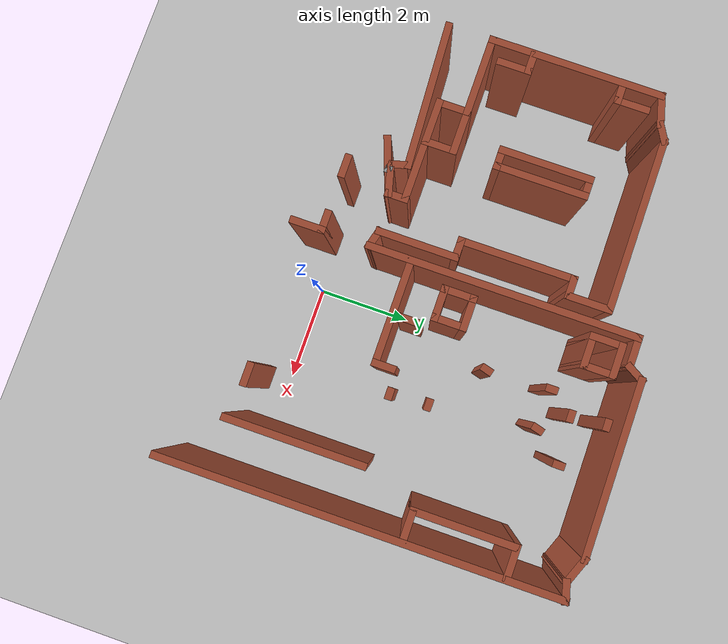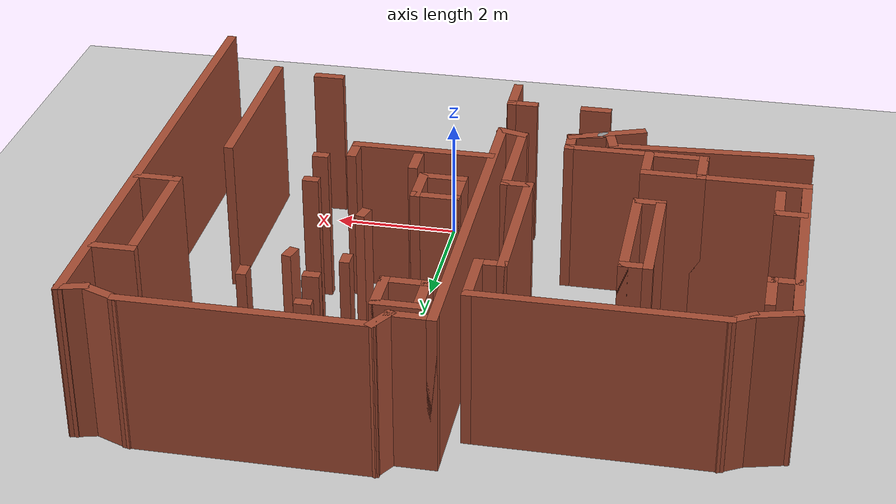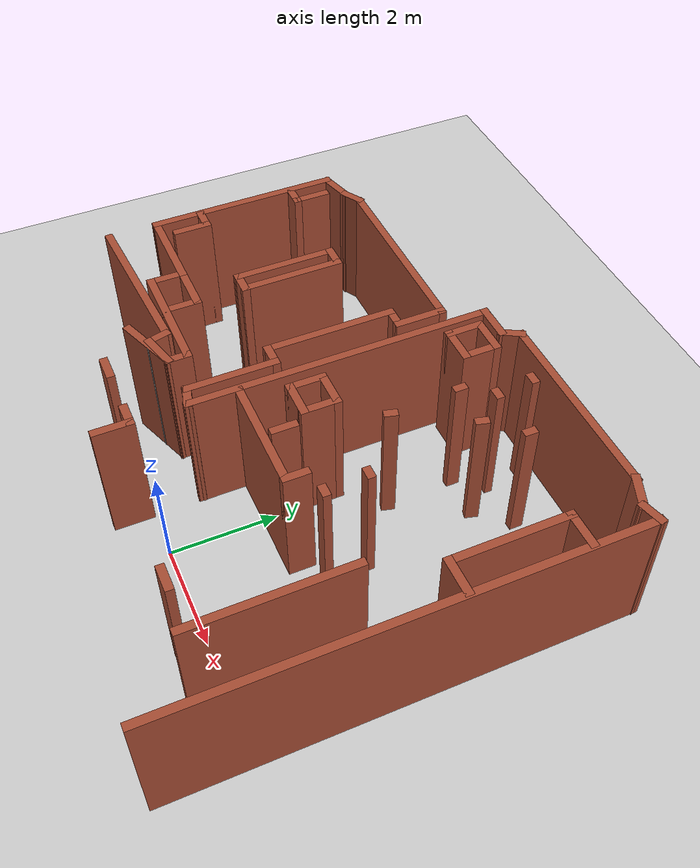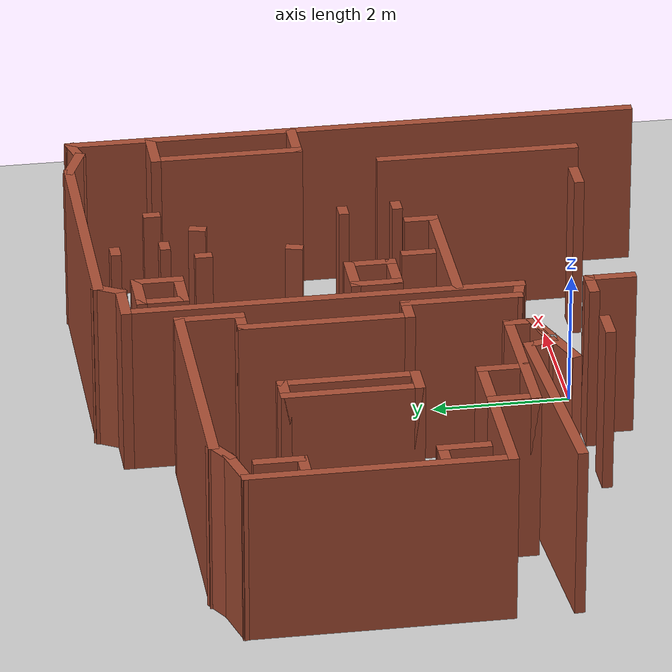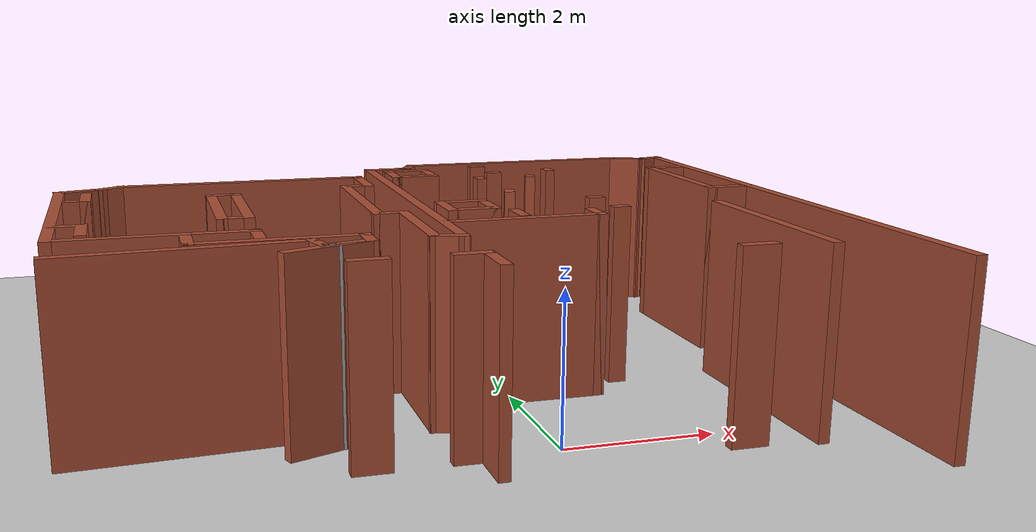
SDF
<sdf version="1.6">
 <world name="default">
  <model name="ground_plane">
   <static>1</static>
   <link name="link">
    <collision name="collision">
     <geometry><plane><normal>0 0 1</normal><size>100 100</size></plane></geometry>
     <surface>
      <contact><collide_bitmask>65535</collide_bitmask></contact>
      <friction><ode><mu>100</mu><mu2>50</mu2></ode></friction>
     </surface>
    </collision>
    <visual name="visual">
     <cast_shadows>0</cast_shadows>
     <geometry><plane><normal>0 0 1</normal><size>100 100</size></plane></geometry>
     <material>
      <script><uri>file://media/materials/scripts/gazebo.material</uri><name>Gazebo/Grey</name></script>
     </material>
    </visual>
   </link>
  </model>
  <model name="map_26">
   <pose>-0.762492 -0.95628 0 0 -0 0</pose>
   <link name="Wall_1">
    <collision name="Wall_1_Collision">
     <geometry><box><size>3.75 0.15 2.5</size></box></geometry>
     <pose>0 0 1.25 0 -0 0</pose>
    </collision>
    <visual name="Wall_1_Visual">
     <pose>0 0 1.25 0 -0 0</pose>
     <geometry><box><size>3.75 0.15 2.5</size></box></geometry>
     <material>
      <script><uri>file://media/materials/scripts/gazebo.material</uri><name>Gazebo/Bricks</name></script>
      <ambient>1 1 1 1</ambient>
     </material>
     <meta><layer>0</layer></meta>
    </visual>
    <pose>2.37487 7.7923 0 0 -0 3.14159</pose>
   </link>
   <link name="Wall_10">
    <collision name="Wall_10_Collision">
     <geometry><box><size>1 0.15 2.5</size></box></geometry>
     <pose>0 0 1.25 0 -0 0</pose>
    </collision>
    <visual name="Wall_10_Visual">
     <pose>0 0 1.25 0 -0 0</pose>
     <geometry><box><size>1 0.15 2.5</size></box></geometry>
     <material>
      <script><uri>file://media/materials/scripts/gazebo.material</uri><name>Gazebo/Bricks</name></script>
      <ambient>1 1 1 1</ambient>
     </material>
     <meta><layer>0</layer></meta>
    </visual>
    <pose>-0.538205 6.35478 0 0 -0 1.5708</pose>
   </link>
   <link name="Wall_101">
    <collision name="Wall_101_Collision">
     <geometry><box><size>0.75 0.15 2.5</size></box></geometry>
     <pose>0 0 1.25 0 -0 0</pose>
    </collision>
    <visual name="Wall_101_Visual">
     <pose>0 0 1.25 0 -0 0</pose>
     <geometry><box><size>0.75 0.15 2.5</size></box></geometry>
     <material>
      <script><uri>file://media/materials/scripts/gazebo.material</uri><name>Gazebo/Bricks</name></script>
      <ambient>1 1 1 1</ambient>
     </material>
     <meta><layer>0</layer></meta>
    </visual>
    <pose>-4.63789 5.94255 0 0 -0 -1.5708</pose>
   </link>
   <link name="Wall_102">
    <collision name="Wall_102_Collision">
     <geometry><box><size>0.5 0.15 2.5</size></box></geometry>
     <pose>0 0 1.25 0 -0 0</pose>
    </collision>
    <visual name="Wall_102_Visual">
     <pose>0 0 1.25 0 -0 0</pose>
     <geometry><box><size>0.5 0.15 2.5</size></box></geometry>
     <material>
      <script><uri>file://media/materials/scripts/gazebo.material</uri><name>Gazebo/Bricks</name></script>
      <ambient>1 1 1 1</ambient>
     </material>
     <meta><layer>0</layer></meta>
    </visual>
    <pose>-4.81289 5.64255 0 0 -0 3.14159</pose>
   </link>
   <link name="Wall_106">
    <collision name="Wall_106_Collision">
     <geometry><box><size>0.5 0.15 2.5</size></box></geometry>
     <pose>0 0 1.25 0 -0 0</pose>
    </collision>
    <visual name="Wall_106_Visual">
     <pose>0 0 1.25 0 -0 0</pose>
     <geometry><box><size>0.5 0.15 2.5</size></box></geometry>
     <material>
      <script><uri>file://media/materials/scripts/gazebo.material</uri><name>Gazebo/Bricks</name></script>
      <ambient>1 1 1 1</ambient>
     </material>
     <meta><layer>0</layer></meta>
    </visual>
    <pose>-4.80985 3.74444 0 0 -0 0</pose>
   </link>
   <link name="Wall_107">
    <collision name="Wall_107_Collision">
     <geometry><box><size>0.75 0.15 2.5</size></box></geometry>
     <pose>0 0 1.25 0 -0 0</pose>
    </collision>
    <visual name="Wall_107_Visual">
     <pose>0 0 1.25 0 -0 0</pose>
     <geometry><box><size>0.75 0.15 2.5</size></box></geometry>
     <material>
      <script><uri>file://media/materials/scripts/gazebo.material</uri><name>Gazebo/Bricks</name></script>
      <ambient>1 1 1 1</ambient>
     </material>
     <meta><layer>0</layer></meta>
    </visual>
    <pose>-4.63485 3.44444 0 0 -0 -1.5708</pose>
   </link>
   <link name="Wall_109">
    <collision name="Wall_109_Collision">
     <geometry><box><size>0.5 0.15 2.5</size></box></geometry>
     <pose>0 0 1.25 0 -0 0</pose>
    </collision>
    <visual name="Wall_109_Visual">
     <pose>0 0 1.25 0 -0 0</pose>
     <geometry><box><size>0.5 0.15 2.5</size></box></geometry>
     <material>
      <script><uri>file://media/materials/scripts/gazebo.material</uri><name>Gazebo/Bricks</name></script>
      <ambient>1 1 1 1</ambient>
     </material>
     <meta><layer>0</layer></meta>
    </visual>
    <pose>-2.73114 5.61802 0 0 -0 3.14159</pose>
   </link>
   <link name="Wall_11">
    <collision name="Wall_11_Collision">
     <geometry><box><size>3.75 0.15 2.5</size></box></geometry>
     <pose>0 0 1.25 0 -0 0</pose>
    </collision>
    <visual name="Wall_11_Visual">
     <pose>0 0 1.25 0 -0 0</pose>
     <geometry><box><size>3.75 0.15 2.5</size></box></geometry>
     <material>
      <script><uri>file://media/materials/scripts/gazebo.material</uri><name>Gazebo/Bricks</name></script>
      <ambient>1 1 1 1</ambient>
     </material>
     <meta><layer>0</layer></meta>
    </visual>
    <pose>-2.3382 6.77978 0 0 -0 3.14159</pose>
   </link>
   <link name="Wall_110">
    <collision name="Wall_110_Collision">
     <geometry><box><size>2 0.15 2.5</size></box></geometry>
     <pose>0 0 1.25 0 -0 0</pose>
    </collision>
    <visual name="Wall_110_Visual">
     <pose>0 0 1.25 0 -0 0</pose>
     <geometry><box><size>2 0.15 2.5</size></box></geometry>
     <material>
      <script><uri>file://media/materials/scripts/gazebo.material</uri><name>Gazebo/Bricks</name></script>
      <ambient>1 1 1 1</ambient>
     </material>
     <meta><layer>0</layer></meta>
    </visual>
    <pose>-2.90614 4.69302 0 0 -0 -1.5708</pose>
   </link>
   <link name="Wall_111">
    <collision name="Wall_111_Collision">
     <geometry><box><size>0.5 0.15 2.5</size></box></geometry>
     <pose>0 0 1.25 0 -0 0</pose>
    </collision>
    <visual name="Wall_111_Visual">
     <pose>0 0 1.25 0 -0 0</pose>
     <geometry><box><size>0.5 0.15 2.5</size></box></geometry>
     <material>
      <script><uri>file://media/materials/scripts/gazebo.material</uri><name>Gazebo/Bricks</name></script>
      <ambient>1 1 1 1</ambient>
     </material>
     <meta><layer>0</layer></meta>
    </visual>
    <pose>-2.73114 3.76802 0 0 -0 0</pose>
   </link>
   <link name="Wall_113">
    <collision name="Wall_113_Collision">
     <geometry><box><size>2 0.15 2.5</size></box></geometry>
     <pose>0 0 1.25 0 -0 0</pose>
    </collision>
    <visual name="Wall_113_Visual">
     <pose>0 0 1.25 0 -0 0</pose>
     <geometry><box><size>2 0.15 2.5</size></box></geometry>
     <material>
      <script><uri>file://media/materials/scripts/gazebo.material</uri><name>Gazebo/Bricks</name></script>
      <ambient>1 1 1 1</ambient>
     </material>
     <meta><layer>0</layer></meta>
    </visual>
    <pose>-2.55614 4.69302 0 0 -0 -1.5708</pose>
   </link>
   <link name="Wall_115">
    <collision name="Wall_115_Collision">
     <geometry><box><size>1 0.15 2.5</size></box></geometry>
     <pose>0 0 1.25 0 -0 0</pose>
    </collision>
    <visual name="Wall_115_Visual">
     <pose>0 0 1.25 0 -0 0</pose>
     <geometry><box><size>1 0.15 2.5</size></box></geometry>
     <material>
      <script><uri>file://media/materials/scripts/gazebo.material</uri><name>Gazebo/Bricks</name></script>
      <ambient>1 1 1 1</ambient>
     </material>
     <meta><layer>0</layer></meta>
    </visual>
    <pose>-2.99587 2.84949 0 0 -0 0</pose>
   </link>
   <link name="Wall_116">
    <collision name="Wall_116_Collision">
     <geometry><box><size>0.75 0.15 2.5</size></box></geometry>
     <pose>0 0 1.25 0 -0 0</pose>
    </collision>
    <visual name="Wall_116_Visual">
     <pose>0 0 1.25 0 -0 0</pose>
     <geometry><box><size>0.75 0.15 2.5</size></box></geometry>
     <material>
      <script><uri>file://media/materials/scripts/gazebo.material</uri><name>Gazebo/Bricks</name></script>
      <ambient>1 1 1 1</ambient>
     </material>
     <meta><layer>0</layer></meta>
    </visual>
    <pose>-2.57087 2.54948 0 0 -0 -1.5708</pose>
   </link>
   <link name="Wall_118">
    <collision name="Wall_118_Collision">
     <geometry><box><size>0.75 0.15 2.5</size></box></geometry>
     <pose>0 0 1.25 0 -0 0</pose>
    </collision>
    <visual name="Wall_118_Visual">
     <pose>0 0 1.25 0 -0 0</pose>
     <geometry><box><size>0.75 0.15 2.5</size></box></geometry>
     <material>
      <script><uri>file://media/materials/scripts/gazebo.material</uri><name>Gazebo/Bricks</name></script>
      <ambient>1 1 1 1</ambient>
     </material>
     <meta><layer>0</layer></meta>
    </visual>
    <pose>4.68444 6.49698 0 0 -0 3.14159</pose>
   </link>
   <link name="Wall_119">
    <collision name="Wall_119_Collision">
     <geometry><box><size>2.25 0.15 2.5</size></box></geometry>
     <pose>0 0 1.25 0 -0 0</pose>
    </collision>
    <visual name="Wall_119_Visual">
     <pose>0 0 1.25 0 -0 0</pose>
     <geometry><box><size>2.25 0.15 2.5</size></box></geometry>
     <material>
      <script><uri>file://media/materials/scripts/gazebo.material</uri><name>Gazebo/Bricks</name></script>
      <ambient>1 1 1 1</ambient>
     </material>
     <meta><layer>0</layer></meta>
    </visual>
    <pose>4.38444 5.44698 0 0 -0 -1.5708</pose>
   </link>
   <link name="Wall_12">
    <collision name="Wall_12_Collision">
     <geometry><box><size>0.5 0.15 2.5</size></box></geometry>
     <pose>0 0 1.25 0 -0 0</pose>
    </collision>
    <visual name="Wall_12_Visual">
     <pose>0 0 1.25 0 -0 0</pose>
     <geometry><box><size>0.5 0.15 2.5</size></box></geometry>
     <material>
      <script><uri>file://media/materials/scripts/gazebo.material</uri><name>Gazebo/Bricks</name></script>
      <ambient>1 1 1 1</ambient>
     </material>
     <meta><layer>0</layer></meta>
    </visual>
    <pose>-4.28976 6.69228 0 0 -0 -2.61799</pose>
   </link>
   <link name="Wall_120">
    <collision name="Wall_120_Collision">
     <geometry><box><size>0.75 0.15 2.5</size></box></geometry>
     <pose>0 0 1.25 0 -0 0</pose>
    </collision>
    <visual name="Wall_120_Visual">
     <pose>0 0 1.25 0 -0 0</pose>
     <geometry><box><size>0.75 0.15 2.5</size></box></geometry>
     <material>
      <script><uri>file://media/materials/scripts/gazebo.material</uri><name>Gazebo/Bricks</name></script>
      <ambient>1 1 1 1</ambient>
     </material>
     <meta><layer>0</layer></meta>
    </visual>
    <pose>4.68444 4.39698 0 0 -0 0</pose>
   </link>
   <link name="Wall_122">
    <collision name="Wall_122_Collision">
     <geometry><box><size>2.25 0.15 2.5</size></box></geometry>
     <pose>0 0 1.25 0 -0 0</pose>
    </collision>
    <visual name="Wall_122_Visual">
     <pose>0 0 1.25 0 -0 0</pose>
     <geometry><box><size>2.25 0.15 2.5</size></box></geometry>
     <material>
      <script><uri>file://media/materials/scripts/gazebo.material</uri><name>Gazebo/Bricks</name></script>
      <ambient>1 1 1 1</ambient>
     </material>
     <meta><layer>0</layer></meta>
    </visual>
    <pose>0.899445 2.77296 0 0 -0 0</pose>
   </link>
   <link name="Wall_123">
    <collision name="Wall_123_Collision">
     <geometry><box><size>0.5 0.15 2.5</size></box></geometry>
     <pose>0 0 1.25 0 -0 0</pose>
    </collision>
    <visual name="Wall_123_Visual">
     <pose>0 0 1.25 0 -0 0</pose>
     <geometry><box><size>0.5 0.15 2.5</size></box></geometry>
     <material>
      <script><uri>file://media/materials/scripts/gazebo.material</uri><name>Gazebo/Bricks</name></script>
      <ambient>1 1 1 1</ambient>
     </material>
     <meta><layer>0</layer></meta>
    </visual>
    <pose>1.94945 2.94796 0 0 -0 1.5708</pose>
   </link>
   <link name="Wall_125">
    <collision name="Wall_125_Collision">
     <geometry><box><size>0.5 0.15 2.5</size></box></geometry>
     <pose>0 0 1.25 0 -0 0</pose>
    </collision>
    <visual name="Wall_125_Visual">
     <pose>0 0 1.25 0 -0 0</pose>
     <geometry><box><size>0.5 0.15 2.5</size></box></geometry>
     <material>
      <script><uri>file://media/materials/scripts/gazebo.material</uri><name>Gazebo/Bricks</name></script>
      <ambient>1 1 1 1</ambient>
     </material>
     <meta><layer>0</layer></meta>
    </visual>
    <pose>0.936584 3.15309 0 0 -0 -1.5708</pose>
   </link>
   <link name="Wall_128">
    <collision name="Wall_128_Collision">
     <geometry><box><size>0.75 0.15 2.5</size></box></geometry>
     <pose>0 0 1.25 0 -0 0</pose>
    </collision>
    <visual name="Wall_128_Visual">
     <pose>0 0 1.25 0 -0 0</pose>
     <geometry><box><size>0.75 0.15 2.5</size></box></geometry>
     <material>
      <script><uri>file://media/materials/scripts/gazebo.material</uri><name>Gazebo/Bricks</name></script>
      <ambient>1 1 1 1</ambient>
     </material>
     <meta><layer>0</layer></meta>
    </visual>
    <pose>0.057621 6.93716 0 0 -0 -1.5708</pose>
   </link>
   <link name="Wall_129">
    <collision name="Wall_129_Collision">
     <geometry><box><size>0.75 0.15 2.5</size></box></geometry>
     <pose>0 0 1.25 0 -0 0</pose>
    </collision>
    <visual name="Wall_129_Visual">
     <pose>0 0 1.25 0 -0 0</pose>
     <geometry><box><size>0.75 0.15 2.5</size></box></geometry>
     <material>
      <script><uri>file://media/materials/scripts/gazebo.material</uri><name>Gazebo/Bricks</name></script>
      <ambient>1 1 1 1</ambient>
     </material>
     <meta><layer>0</layer></meta>
    </visual>
    <pose>0.357621 6.63716 0 0 -0 0</pose>
   </link>
   <link name="Wall_13">
    <collision name="Wall_13_Collision">
     <geometry><box><size>0.75 0.15 2.5</size></box></geometry>
     <pose>0 0 1.25 0 -0 0</pose>
    </collision>
    <visual name="Wall_13_Visual">
     <pose>0 0 1.25 0 -0 0</pose>
     <geometry><box><size>0.75 0.15 2.5</size></box></geometry>
     <material>
      <script><uri>file://media/materials/scripts/gazebo.material</uri><name>Gazebo/Bricks</name></script>
      <ambient>1 1 1 1</ambient>
     </material>
     <meta><layer>0</layer></meta>
    </visual>
    <pose>-4.73109 6.52713 0 0 -0 -2.87979</pose>
   </link>
   <link name="Wall_130">
    <collision name="Wall_130_Collision">
     <geometry><box><size>0.75 0.15 2.5</size></box></geometry>
     <pose>0 0 1.25 0 -0 0</pose>
    </collision>
    <visual name="Wall_130_Visual">
     <pose>0 0 1.25 0 -0 0</pose>
     <geometry><box><size>0.75 0.15 2.5</size></box></geometry>
     <material>
      <script><uri>file://media/materials/scripts/gazebo.material</uri><name>Gazebo/Bricks</name></script>
      <ambient>1 1 1 1</ambient>
     </material>
     <meta><layer>0</layer></meta>
    </visual>
    <pose>0.657621 6.93716 0 0 -0 1.5708</pose>
   </link>
   <link name="Wall_131">
    <collision name="Wall_131_Collision">
     <geometry><box><size>0.75 0.15 2.5</size></box></geometry>
     <pose>0 0 1.25 0 -0 0</pose>
    </collision>
    <visual name="Wall_131_Visual">
     <pose>0 0 1.25 0 -0 0</pose>
     <geometry><box><size>0.75 0.15 2.5</size></box></geometry>
     <material>
      <script><uri>file://media/materials/scripts/gazebo.material</uri><name>Gazebo/Bricks</name></script>
      <ambient>1 1 1 1</ambient>
     </material>
     <meta><layer>0</layer></meta>
    </visual>
    <pose>0.357621 7.23716 0 0 -0 3.14159</pose>
   </link>
   <link name="Wall_135">
    <collision name="Wall_135_Collision">
     <geometry><box><size>0.75 0.15 2.5</size></box></geometry>
     <pose>0 0 1.25 0 -0 0</pose>
    </collision>
    <visual name="Wall_135_Visual">
     <pose>0 0 1.25 0 -0 0</pose>
     <geometry><box><size>0.75 0.15 2.5</size></box></geometry>
     <material>
      <script><uri>file://media/materials/scripts/gazebo.material</uri><name>Gazebo/Bricks</name></script>
      <ambient>1 1 1 1</ambient>
     </material>
     <meta><layer>0</layer></meta>
    </visual>
    <pose>0.127013 3.88392 0 0 -0 -1.5708</pose>
   </link>
   <link name="Wall_136">
    <collision name="Wall_136_Collision">
     <geometry><box><size>0.75 0.15 2.5</size></box></geometry>
     <pose>0 0 1.25 0 -0 0</pose>
    </collision>
    <visual name="Wall_136_Visual">
     <pose>0 0 1.25 0 -0 0</pose>
     <geometry><box><size>0.75 0.15 2.5</size></box></geometry>
     <material>
      <script><uri>file://media/materials/scripts/gazebo.material</uri><name>Gazebo/Bricks</name></script>
      <ambient>1 1 1 1</ambient>
     </material>
     <meta><layer>0</layer></meta>
    </visual>
    <pose>0.427013 3.58392 0 0 -0 0</pose>
   </link>
   <link name="Wall_137">
    <collision name="Wall_137_Collision">
     <geometry><box><size>0.75 0.15 2.5</size></box></geometry>
     <pose>0 0 1.25 0 -0 0</pose>
    </collision>
    <visual name="Wall_137_Visual">
     <pose>0 0 1.25 0 -0 0</pose>
     <geometry><box><size>0.75 0.15 2.5</size></box></geometry>
     <material>
      <script><uri>file://media/materials/scripts/gazebo.material</uri><name>Gazebo/Bricks</name></script>
      <ambient>1 1 1 1</ambient>
     </material>
     <meta><layer>0</layer></meta>
    </visual>
    <pose>0.727013 3.88392 0 0 -0 1.5708</pose>
   </link>
   <link name="Wall_138">
    <collision name="Wall_138_Collision">
     <geometry><box><size>0.75 0.15 2.5</size></box></geometry>
     <pose>0 0 1.25 0 -0 0</pose>
    </collision>
    <visual name="Wall_138_Visual">
     <pose>0 0 1.25 0 -0 0</pose>
     <geometry><box><size>0.75 0.15 2.5</size></box></geometry>
     <material>
      <script><uri>file://media/materials/scripts/gazebo.material</uri><name>Gazebo/Bricks</name></script>
      <ambient>1 1 1 1</ambient>
     </material>
     <meta><layer>0</layer></meta>
    </visual>
    <pose>0.427013 4.18392 0 0 -0 3.14159</pose>
   </link>
   <link name="Wall_14">
    <collision name="Wall_14_Collision">
     <geometry><box><size>3.75 0.15 2.5</size></box></geometry>
     <pose>0 0 1.25 0 -0 0</pose>
    </collision>
    <visual name="Wall_14_Visual">
     <pose>0 0 1.25 0 -0 0</pose>
     <geometry><box><size>3.75 0.15 2.5</size></box></geometry>
     <material>
      <script><uri>file://media/materials/scripts/gazebo.material</uri><name>Gazebo/Bricks</name></script>
      <ambient>1 1 1 1</ambient>
     </material>
     <meta><layer>0</layer></meta>
    </visual>
    <pose>-5.02087 4.64949 0 0 -0 -1.5708</pose>
   </link>
   <link name="Wall_140">
    <collision name="Wall_140_Collision">
     <geometry><box><size>3 0.15 2.5</size></box></geometry>
     <pose>0 0 1.25 0 -0 0</pose>
    </collision>
    <visual name="Wall_140_Visual">
     <pose>0 0 1.25 0 -0 0</pose>
     <geometry><box><size>3 0.15 2.5</size></box></geometry>
     <material>
      <script><uri>file://media/materials/scripts/gazebo.material</uri><name>Gazebo/Bricks</name></script>
      <ambient>1 1 1 1</ambient>
     </material>
     <meta><layer>0</layer></meta>
    </visual>
    <pose>3.8973 1.78744 0 0 -0 -1.5708</pose>
   </link>
   <link name="Wall_15">
    <collision name="Wall_15_Collision">
     <geometry><box><size>1.75 0.15 2.5</size></box></geometry>
     <pose>0 0 1.25 0 -0 0</pose>
    </collision>
    <visual name="Wall_15_Visual">
     <pose>0 0 1.25 0 -0 0</pose>
     <geometry><box><size>1.75 0.15 2.5</size></box></geometry>
     <material>
      <script><uri>file://media/materials/scripts/gazebo.material</uri><name>Gazebo/Bricks</name></script>
      <ambient>1 1 1 1</ambient>
     </material>
     <meta><layer>0</layer></meta>
    </visual>
    <pose>-4.22087 2.84949 0 0 -0 0</pose>
   </link>
   <link name="Wall_186">
    <collision name="Wall_186_Collision">
     <geometry><box><size>0.25 0.15 2.5</size></box></geometry>
     <pose>0 0 1.25 0 -0 0</pose>
    </collision>
    <visual name="Wall_186_Visual">
     <pose>0 0 1.25 0 -0 0</pose>
     <geometry><box><size>0.25 0.15 2.5</size></box></geometry>
     <material>
      <script><uri>file://media/materials/scripts/gazebo.material</uri><name>Gazebo/Bricks</name></script>
      <ambient>1 1 1 1</ambient>
     </material>
     <meta><layer>0</layer></meta>
    </visual>
    <pose>1.61111 7.42221 0 0 -0 0</pose>
   </link>
   <link name="Wall_188">
    <collision name="Wall_188_Collision">
     <geometry><box><size>0.25 0.15 2.5</size></box></geometry>
     <pose>0 0 1.25 0 -0 0</pose>
    </collision>
    <visual name="Wall_188_Visual">
     <pose>0 0 1.25 0 -0 0</pose>
     <geometry><box><size>0.25 0.15 2.5</size></box></geometry>
     <material>
      <script><uri>file://media/materials/scripts/gazebo.material</uri><name>Gazebo/Bricks</name></script>
      <ambient>1 1 1 1</ambient>
     </material>
     <meta><layer>0</layer></meta>
    </visual>
    <pose>1.6805 6.70516 0 0 -0 0</pose>
   </link>
   <link name="Wall_19">
    <collision name="Wall_19_Collision">
     <geometry><box><size>0.75 0.15 2.5</size></box></geometry>
     <pose>0 0 1.25 0 -0 0</pose>
    </collision>
    <visual name="Wall_19_Visual">
     <pose>0 0 1.25 0 -0 0</pose>
     <geometry><box><size>0.75 0.15 2.5</size></box></geometry>
     <material>
      <script><uri>file://media/materials/scripts/gazebo.material</uri><name>Gazebo/Bricks</name></script>
      <ambient>1 1 1 1</ambient>
     </material>
     <meta><layer>0</layer></meta>
    </visual>
    <pose>-3.42087 2.54948 0 0 -0 -1.5708</pose>
   </link>
   <link name="Wall_192">
    <collision name="Wall_192_Collision">
     <geometry><box><size>0.25 0.15 2.5</size></box></geometry>
     <pose>0 0 1.25 0 -0 0</pose>
    </collision>
    <visual name="Wall_192_Visual">
     <pose>0 0 1.25 0 -0 0</pose>
     <geometry><box><size>0.25 0.15 2.5</size></box></geometry>
     <material>
      <script><uri>file://media/materials/scripts/gazebo.material</uri><name>Gazebo/Bricks</name></script>
      <ambient>1 1 1 1</ambient>
     </material>
     <meta><layer>0</layer></meta>
    </visual>
    <pose>1.30667 6.19255 0 0 -0 -1.5708</pose>
   </link>
   <link name="Wall_194">
    <collision name="Wall_194_Collision">
     <geometry><box><size>0.25 0.15 2.5</size></box></geometry>
     <pose>0 0 1.25 0 -0 0</pose>
    </collision>
    <visual name="Wall_194_Visual">
     <pose>0 0 1.25 0 -0 0</pose>
     <geometry><box><size>0.25 0.15 2.5</size></box></geometry>
     <material>
      <script><uri>file://media/materials/scripts/gazebo.material</uri><name>Gazebo/Bricks</name></script>
      <ambient>1 1 1 1</ambient>
     </material>
     <meta><layer>0</layer></meta>
    </visual>
    <pose>1.36312 4.87581 0 0 -0 -1.8326</pose>
   </link>
   <link name="Wall_196">
    <collision name="Wall_196_Collision">
     <geometry><box><size>0.25 0.15 2.5</size></box></geometry>
     <pose>0 0 1.25 0 -0 0</pose>
    </collision>
    <visual name="Wall_196_Visual">
     <pose>0 0 1.25 0 -0 0</pose>
     <geometry><box><size>0.25 0.15 2.5</size></box></geometry>
     <material>
      <script><uri>file://media/materials/scripts/gazebo.material</uri><name>Gazebo/Bricks</name></script>
      <ambient>1 1 1 1</ambient>
     </material>
     <meta><layer>0</layer></meta>
    </visual>
    <pose>2.37442 4.02201 0 0 -0 0</pose>
   </link>
   <link name="Wall_198">
    <collision name="Wall_198_Collision">
     <geometry><box><size>0.25 0.15 2.5</size></box></geometry>
     <pose>0 0 1.25 0 -0 0</pose>
    </collision>
    <visual name="Wall_198_Visual">
     <pose>0 0 1.25 0 -0 0</pose>
     <geometry><box><size>0.25 0.15 2.5</size></box></geometry>
     <material>
      <script><uri>file://media/materials/scripts/gazebo.material</uri><name>Gazebo/Bricks</name></script>
      <ambient>1 1 1 1</ambient>
     </material>
     <meta><layer>0</layer></meta>
    </visual>
    <pose>2.42068 3.23557 0 0 -0 0</pose>
   </link>
   <link name="Wall_2">
    <collision name="Wall_2_Collision">
     <geometry><box><size>0.5 0.15 2.5</size></box></geometry>
     <pose>0 0 1.25 0 -0 0</pose>
    </collision>
    <visual name="Wall_2_Visual">
     <pose>0 0 1.25 0 -0 0</pose>
     <geometry><box><size>0.5 0.15 2.5</size></box></geometry>
     <material>
      <script><uri>file://media/materials/scripts/gazebo.material</uri><name>Gazebo/Bricks</name></script>
      <ambient>1 1 1 1</ambient>
     </material>
     <meta><layer>0</layer></meta>
    </visual>
    <pose>0.487369 7.64074 0 0 -0 -2.0944</pose>
   </link>
   <link name="Wall_200">
    <collision name="Wall_200_Collision">
     <geometry><box><size>0.25 0.15 2.5</size></box></geometry>
     <pose>0 0 1.25 0 -0 0</pose>
    </collision>
    <visual name="Wall_200_Visual">
     <pose>0 0 1.25 0 -0 0</pose>
     <geometry><box><size>0.25 0.15 2.5</size></box></geometry>
     <material>
      <script><uri>file://media/materials/scripts/gazebo.material</uri><name>Gazebo/Bricks</name></script>
      <ambient>1 1 1 1</ambient>
     </material>
     <meta><layer>0</layer></meta>
    </visual>
    <pose>2.64825 6.77081 0 0 -0 -1.5708</pose>
   </link>
   <link name="Wall_202">
    <collision name="Wall_202_Collision">
     <geometry><box><size>0.25 0.15 2.5</size></box></geometry>
     <pose>0 0 1.25 0 -0 0</pose>
    </collision>
    <visual name="Wall_202_Visual">
     <pose>0 0 1.25 0 -0 0</pose>
     <geometry><box><size>0.25 0.15 2.5</size></box></geometry>
     <material>
      <script><uri>file://media/materials/scripts/gazebo.material</uri><name>Gazebo/Bricks</name></script>
      <ambient>1 1 1 1</ambient>
     </material>
     <meta><layer>0</layer></meta>
    </visual>
    <pose>2.12643 6.17112 0 0 -0 -1.8326</pose>
   </link>
   <link name="Wall_208">
    <collision name="Wall_208_Collision">
     <geometry><box><size>0.5 0.15 2.5</size></box></geometry>
     <pose>0 0 1.25 0 -0 0</pose>
    </collision>
    <visual name="Wall_208_Visual">
     <pose>0 0 1.25 0 -0 0</pose>
     <geometry><box><size>0.5 0.15 2.5</size></box></geometry>
     <material>
      <script><uri>file://media/materials/scripts/gazebo.material</uri><name>Gazebo/Bricks</name></script>
      <ambient>1 1 1 1</ambient>
     </material>
     <meta><layer>0</layer></meta>
    </visual>
    <pose>-1.32087 2.07449 0 0 -0 -1.5708</pose>
   </link>
   <link name="Wall_209">
    <collision name="Wall_209_Collision">
     <geometry><box><size>0.75 0.15 2.5</size></box></geometry>
     <pose>0 0 1.25 0 -0 0</pose>
    </collision>
    <visual name="Wall_209_Visual">
     <pose>0 0 1.25 0 -0 0</pose>
     <geometry><box><size>0.75 0.15 2.5</size></box></geometry>
     <material>
      <script><uri>file://media/materials/scripts/gazebo.material</uri><name>Gazebo/Bricks</name></script>
      <ambient>1 1 1 1</ambient>
     </material>
     <meta><layer>0</layer></meta>
    </visual>
    <pose>-1.61065 1.82184 0 0 -0 -2.87979</pose>
   </link>
   <link name="Wall_210">
    <collision name="Wall_210_Collision">
     <geometry><box><size>0.5 0.15 2.5</size></box></geometry>
     <pose>0 0 1.25 0 -0 0</pose>
    </collision>
    <visual name="Wall_210_Visual">
     <pose>0 0 1.25 0 -0 0</pose>
     <geometry><box><size>0.5 0.15 2.5</size></box></geometry>
     <material>
      <script><uri>file://media/materials/scripts/gazebo.material</uri><name>Gazebo/Bricks</name></script>
      <ambient>1 1 1 1</ambient>
     </material>
     <meta><layer>0</layer></meta>
    </visual>
    <pose>-1.94572 1.91323 0 0 -0 1.8326</pose>
   </link>
   <link name="Wall_211">
    <collision name="Wall_211_Collision">
     <geometry><box><size>3.17291 0.15 2.5</size></box></geometry>
     <pose>0 0 1.25 0 -0 0</pose>
    </collision>
    <visual name="Wall_211_Visual">
     <pose>0 0 1.25 0 -0 0</pose>
     <geometry><box><size>3.17291 0.15 2.5</size></box></geometry>
     <material>
      <script><uri>file://media/materials/scripts/gazebo.material</uri><name>Gazebo/Bricks</name></script>
      <ambient>1 1 1 1</ambient>
     </material>
     <meta><layer>0</layer></meta>
    </visual>
    <pose>-3.49998 1.99558 0 0 -0 -3.08421</pose>
   </link>
   <link name="Wall_214">
    <collision name="Wall_214_Collision">
     <geometry><box><size>1.2713 0.15 2.5</size></box></geometry>
     <pose>0 0 1.25 0 -0 0</pose>
    </collision>
    <visual name="Wall_214_Visual">
     <pose>0 0 1.25 0 -0 0</pose>
     <geometry><box><size>1.2713 0.15 2.5</size></box></geometry>
     <material>
      <script><uri>file://media/materials/scripts/gazebo.material</uri><name>Gazebo/Bricks</name></script>
      <ambient>1 1 1 1</ambient>
     </material>
     <meta><layer>0</layer></meta>
    </visual>
    <pose>-1.84647 1.70437 0 0 -0 0.355454</pose>
   </link>
   <link name="Wall_23">
    <collision name="Wall_23_Collision">
     <geometry><box><size>0.15 0.15 2.5</size></box></geometry>
     <pose>0 0 1.25 0 -0 0</pose>
    </collision>
    <visual name="Wall_23_Visual">
     <pose>0 0 1.25 0 -0 0</pose>
     <geometry><box><size>0.15 0.15 2.5</size></box></geometry>
     <material>
      <script><uri>file://media/materials/scripts/gazebo.material</uri><name>Gazebo/Grey</name></script>
      <ambient>1 1 1 1</ambient>
     </material>
     <meta><layer>0</layer></meta>
    </visual>
    <pose>-1.78339 1.73641 0 0 -0 0</pose>
   </link>
   <link name="Wall_24">
    <collision name="Wall_24_Collision">
     <geometry><box><size>0.15 0.15 2.5</size></box></geometry>
     <pose>0 0 1.25 0 -0 0</pose>
    </collision>
    <visual name="Wall_24_Visual">
     <pose>0 0 1.25 0 -0 0</pose>
     <geometry><box><size>0.15 0.15 2.5</size></box></geometry>
     <material>
      <script><uri>file://media/materials/scripts/gazebo.material</uri><name>Gazebo/Bricks</name></script>
      <ambient>1 1 1 1</ambient>
     </material>
     <meta><layer>0</layer></meta>
    </visual>
    <pose>-1.78339 1.73641 0 0 -0 0</pose>
   </link>
   <link name="Wall_26">
    <collision name="Wall_26_Collision">
     <geometry><box><size>2.25 0.15 2.5</size></box></geometry>
     <pose>0 0 1.25 0 -0 0</pose>
    </collision>
    <visual name="Wall_26_Visual">
     <pose>0 0 1.25 0 -0 0</pose>
     <geometry><box><size>2.25 0.15 2.5</size></box></geometry>
     <material>
      <script><uri>file://media/materials/scripts/gazebo.material</uri><name>Gazebo/Bricks</name></script>
      <ambient>1 1 1 1</ambient>
     </material>
     <meta><layer>0</layer></meta>
    </visual>
    <pose>-2.37087 2.24948 0 0 -0 0</pose>
   </link>
   <link name="Wall_3">
    <collision name="Wall_3_Collision">
     <geometry><box><size>0.75 0.15 2.5</size></box></geometry>
     <pose>0 0 1.25 0 -0 0</pose>
    </collision>
    <visual name="Wall_3_Visual">
     <pose>0 0 1.25 0 -0 0</pose>
     <geometry><box><size>0.75 0.15 2.5</size></box></geometry>
     <material>
      <script><uri>file://media/materials/scripts/gazebo.material</uri><name>Gazebo/Bricks</name></script>
      <ambient>1 1 1 1</ambient>
     </material>
     <meta><layer>0</layer></meta>
    </visual>
    <pose>0.099869 7.48919 0 0 -0 3.14159</pose>
   </link>
   <link name="Wall_4">
    <collision name="Wall_4_Collision">
     <geometry><box><size>5.75 0.15 2.5</size></box></geometry>
     <pose>0 0 1.25 0 -0 0</pose>
    </collision>
    <visual name="Wall_4_Visual">
     <pose>0 0 1.25 0 -0 0</pose>
     <geometry><box><size>5.75 0.15 2.5</size></box></geometry>
     <material>
      <script><uri>file://media/materials/scripts/gazebo.material</uri><name>Gazebo/Bricks</name></script>
      <ambient>1 1 1 1</ambient>
     </material>
     <meta><layer>0</layer></meta>
    </visual>
    <pose>-0.200131 4.68919 0 0 -0 -1.5708</pose>
   </link>
   <link name="Wall_5">
    <collision name="Wall_5_Collision">
     <geometry><box><size>0.5 0.15 2.5</size></box></geometry>
     <pose>0 0 1.25 0 -0 0</pose>
    </collision>
    <visual name="Wall_5_Visual">
     <pose>0 0 1.25 0 -0 0</pose>
     <geometry><box><size>0.5 0.15 2.5</size></box></geometry>
     <material>
      <script><uri>file://media/materials/scripts/gazebo.material</uri><name>Gazebo/Bricks</name></script>
      <ambient>1 1 1 1</ambient>
     </material>
     <meta><layer>0</layer></meta>
    </visual>
    <pose>-0.369168 1.93448 0 0 -0 2.87979</pose>
   </link>
   <link name="Wall_51">
    <collision name="Wall_51_Collision">
     <geometry><box><size>0.5 0.15 2.5</size></box></geometry>
     <pose>0 0 1.25 0 -0 0</pose>
    </collision>
    <visual name="Wall_51_Visual">
     <pose>0 0 1.25 0 -0 0</pose>
     <geometry><box><size>0.5 0.15 2.5</size></box></geometry>
     <material>
      <script><uri>file://media/materials/scripts/gazebo.material</uri><name>Gazebo/Bricks</name></script>
      <ambient>1 1 1 1</ambient>
     </material>
     <meta><layer>0</layer></meta>
    </visual>
    <pose>-1.5681 0.89243 0 0 -0 0</pose>
   </link>
   <link name="Wall_55">
    <collision name="Wall_55_Collision">
     <geometry><box><size>0.5 0.15 2.5</size></box></geometry>
     <pose>0 0 1.25 0 -0 0</pose>
    </collision>
    <visual name="Wall_55_Visual">
     <pose>0 0 1.25 0 -0 0</pose>
     <geometry><box><size>0.5 0.15 2.5</size></box></geometry>
     <material>
      <script><uri>file://media/materials/scripts/gazebo.material</uri><name>Gazebo/Bricks</name></script>
      <ambient>1 1 1 1</ambient>
     </material>
     <meta><layer>0</layer></meta>
    </visual>
    <pose>-0.368104 0.89243 0 0 -0 0</pose>
   </link>
   <link name="Wall_56">
    <collision name="Wall_56_Collision">
     <geometry><box><size>0.75 0.15 2.5</size></box></geometry>
     <pose>0 0 1.25 0 -0 0</pose>
    </collision>
    <visual name="Wall_56_Visual">
     <pose>0 0 1.25 0 -0 0</pose>
     <geometry><box><size>0.75 0.15 2.5</size></box></geometry>
     <material>
      <script><uri>file://media/materials/scripts/gazebo.material</uri><name>Gazebo/Bricks</name></script>
      <ambient>1 1 1 1</ambient>
     </material>
     <meta><layer>0</layer></meta>
    </visual>
    <pose>-0.193104 0.59243 0 0 -0 -1.5708</pose>
   </link>
   <link name="Wall_6">
    <collision name="Wall_6_Collision">
     <geometry><box><size>1.75 0.15 2.5</size></box></geometry>
     <pose>0 0 1.25 0 -0 0</pose>
    </collision>
    <visual name="Wall_6_Visual">
     <pose>0 0 1.25 0 -0 0</pose>
     <geometry><box><size>1.75 0.15 2.5</size></box></geometry>
     <material>
      <script><uri>file://media/materials/scripts/gazebo.material</uri><name>Gazebo/Bricks</name></script>
      <ambient>1 1 1 1</ambient>
     </material>
     <meta><layer>0</layer></meta>
    </visual>
    <pose>-0.538205 2.77978 0 0 -0 1.5708</pose>
   </link>
   <link name="Wall_7">
    <collision name="Wall_7_Collision">
     <geometry><box><size>0.5 0.15 2.5</size></box></geometry>
     <pose>0 0 1.25 0 -0 0</pose>
    </collision>
    <visual name="Wall_7_Visual">
     <pose>0 0 1.25 0 -0 0</pose>
     <geometry><box><size>0.5 0.15 2.5</size></box></geometry>
     <material>
      <script><uri>file://media/materials/scripts/gazebo.material</uri><name>Gazebo/Bricks</name></script>
      <ambient>1 1 1 1</ambient>
     </material>
     <meta><layer>0</layer></meta>
    </visual>
    <pose>-0.713205 3.57978 0 0 -0 3.14159</pose>
   </link>
   <link name="Wall_8">
    <collision name="Wall_8_Collision">
     <geometry><box><size>2.5 0.15 2.5</size></box></geometry>
     <pose>0 0 1.25 0 -0 0</pose>
    </collision>
    <visual name="Wall_8_Visual">
     <pose>0 0 1.25 0 -0 0</pose>
     <geometry><box><size>2.5 0.15 2.5</size></box></geometry>
     <material>
      <script><uri>file://media/materials/scripts/gazebo.material</uri><name>Gazebo/Bricks</name></script>
      <ambient>1 1 1 1</ambient>
     </material>
     <meta><layer>0</layer></meta>
    </visual>
    <pose>-0.888205 4.75478 0 0 -0 1.5708</pose>
   </link>
   <link name="Wall_9">
    <collision name="Wall_9_Collision">
     <geometry><box><size>0.5 0.15 2.5</size></box></geometry>
     <pose>0 0 1.25 0 -0 0</pose>
    </collision>
    <visual name="Wall_9_Visual">
     <pose>0 0 1.25 0 -0 0</pose>
     <geometry><box><size>0.5 0.15 2.5</size></box></geometry>
     <material>
      <script><uri>file://media/materials/scripts/gazebo.material</uri><name>Gazebo/Bricks</name></script>
      <ambient>1 1 1 1</ambient>
     </material>
     <meta><layer>0</layer></meta>
    </visual>
    <pose>-0.713205 5.92978 0 0 -0 0</pose>
   </link>
   <link name="Wall_90">
    <collision name="Wall_90_Collision">
     <geometry><box><size>0.5 0.15 2.5</size></box></geometry>
     <pose>0 0 1.25 0 -0 0</pose>
    </collision>
    <visual name="Wall_90_Visual">
     <pose>0 0 1.25 0 -0 0</pose>
     <geometry><box><size>0.5 0.15 2.5</size></box></geometry>
     <material>
      <script><uri>file://media/materials/scripts/gazebo.material</uri><name>Gazebo/Bricks</name></script>
      <ambient>1 1 1 1</ambient>
     </material>
     <meta><layer>0</layer></meta>
    </visual>
    <pose>2.97087 0.482724 0 0 -0 0</pose>
   </link>
   <link name="Wall_97">
    <collision name="Wall_97_Collision">
     <geometry><box><size>8.5 0.15 2.5</size></box></geometry>
     <pose>0 0 1.25 0 -0 0</pose>
    </collision>
    <visual name="Wall_97_Visual">
     <pose>0 0 1.25 0 -0 0</pose>
     <geometry><box><size>8.5 0.15 2.5</size></box></geometry>
     <material>
      <script><uri>file://media/materials/scripts/gazebo.material</uri><name>Gazebo/Bricks</name></script>
      <ambient>1 1 1 1</ambient>
     </material>
     <meta><layer>0</layer></meta>
    </visual>
    <pose>5.02087 3.50461 0 0 -0 1.5708</pose>
   </link>
   <link name="Wall_98">
    <collision name="Wall_98_Collision">
     <geometry><box><size>0.5 0.15 2.5</size></box></geometry>
     <pose>0 0 1.25 0 -0 0</pose>
    </collision>
    <visual name="Wall_98_Visual">
     <pose>0 0 1.25 0 -0 0</pose>
     <geometry><box><size>0.5 0.15 2.5</size></box></geometry>
     <material>
      <script><uri>file://media/materials/scripts/gazebo.material</uri><name>Gazebo/Bricks</name></script>
      <ambient>1 1 1 1</ambient>
     </material>
     <meta><layer>0</layer></meta>
    </visual>
    <pose>4.85183 7.63432 0 0 -0 -2.87979</pose>
   </link>
   <link name="Wall_99">
    <collision name="Wall_99_Collision">
     <geometry><box><size>0.697091 0.15 2.5</size></box></geometry>
     <pose>0 0 1.25 0 -0 0</pose>
    </collision>
    <visual name="Wall_99_Visual">
     <pose>0 0 1.25 0 -0 0</pose>
     <geometry><box><size>0.697091 0.15 2.5</size></box></geometry>
     <material>
      <script><uri>file://media/materials/scripts/gazebo.material</uri><name>Gazebo/Bricks</name></script>
      <ambient>1 1 1 1</ambient>
     </material>
     <meta><layer>0</layer></meta>
    </visual>
    <pose>4.42883 7.69066 0 0 -0 2.76092</pose>
   </link>
   <static>1</static>
  </model>
 </world>
</sdf>
